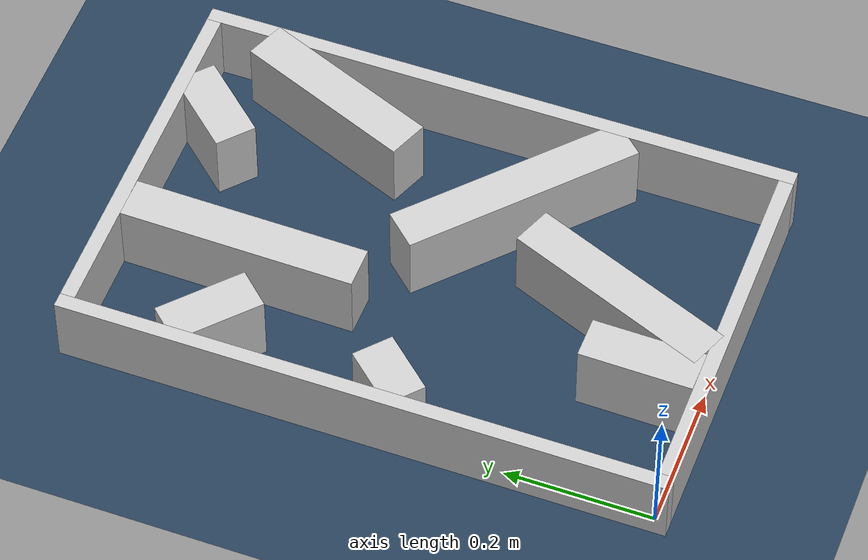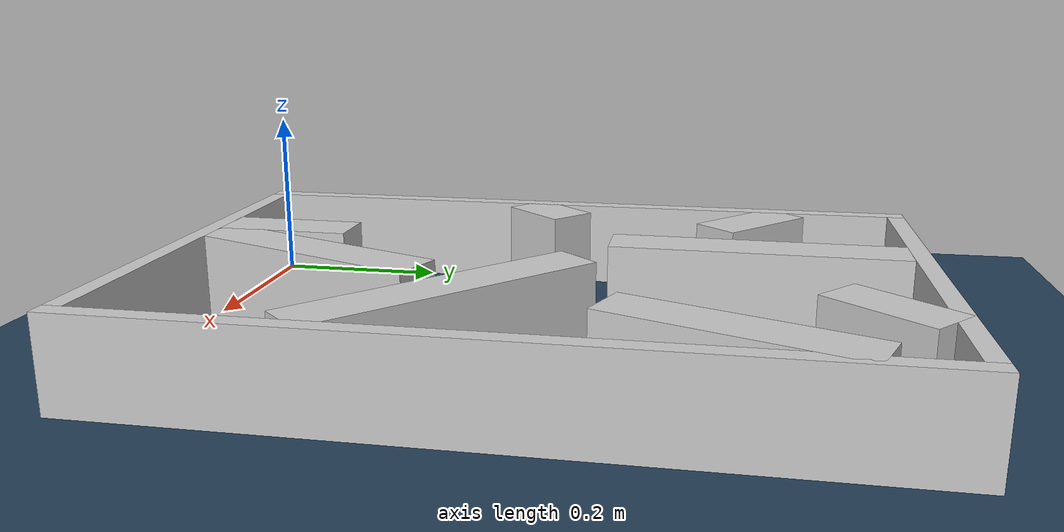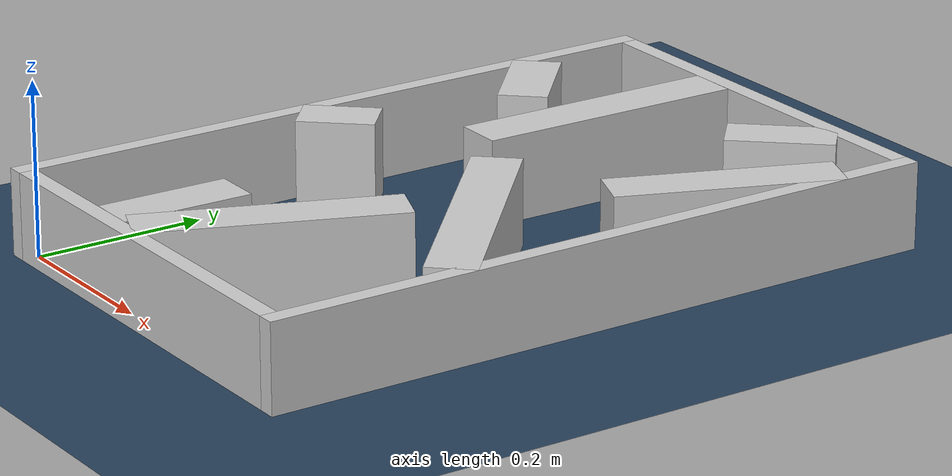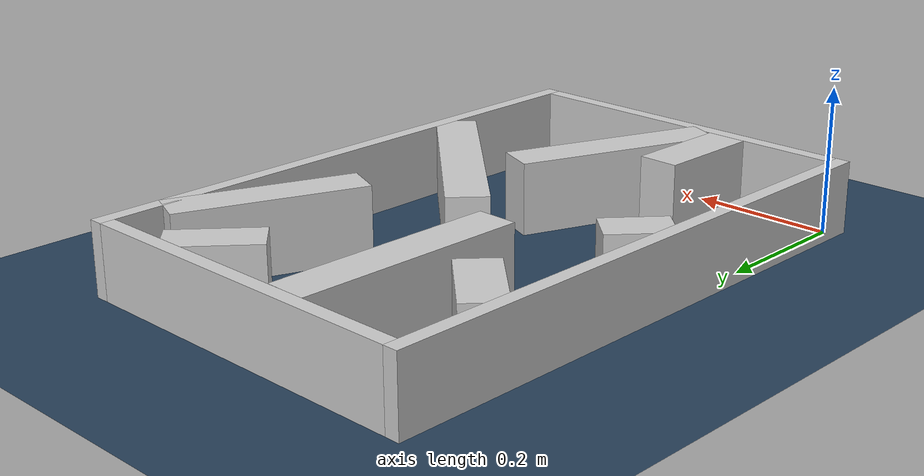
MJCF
<?xml version="1.0" ?>
<mujoco model="generated_real_template">
  <compiler angle="degree"/>
  <option timestep="0.002" integrator="implicitfast" iterations="100" cone="elliptic"/>
  <default>
    <geom density="1"/>
  </default>
  <asset>
    <texture builtin="gradient" height="3072" rgb1="0.3 0.5 0.7" rgb2="0 0 0" type="skybox" width="512"/>
    <texture builtin="checker" height="300" mark="edge" markrgb="0.8 0.8 0.8" name="groundplane" rgb1="0.2 0.3 0.4" rgb2="0.1 0.2 0.3" type="2d" width="300"/>
    <material name="groundplane" reflectance="0.2" texrepeat="5 5" texture="groundplane" texuniform="true"/>
  </asset>
  <worldbody>
    <light dir="0 0 -1" directional="true" pos="0 0 1.5"/>
    <geom name="floor" type="plane" condim="4" friction="0.5 0.005 0.001" material="groundplane" size="0 0 0.05"/>
    <body name="walls">
      <geom name="wall_boundary_left" type="box" condim="4" friction="1.0 0.005 0.0001" rgba="0.8 0.8 0.8 1" pos="-0.010000 0.387500 0.050000" euler="0 0 0.000000" size="0.010000 0.407500 0.050000"/>
      <geom name="wall_boundary_right" type="box" condim="4" friction="1.0 0.005 0.0001" rgba="0.8 0.8 0.8 1" pos="0.500000 0.387500 0.050000" euler="0 0 0.000000" size="0.010000 0.407500 0.050000"/>
      <geom name="wall_boundary_bottom" type="box" condim="4" friction="1.0 0.005 0.0001" rgba="0.8 0.8 0.8 1" pos="0.245000 -0.010000 0.050000" euler="0 0 0.000000" size="0.245000 0.010000 0.050000"/>
      <geom name="wall_boundary_top" type="box" condim="4" friction="1.0 0.005 0.0001" rgba="0.8 0.8 0.8 1" pos="0.245000 0.785000 0.050000" euler="0 0 0.000000" size="0.245000 0.010000 0.050000"/>
      <geom name="wall_inner_1_1" type="box" condim="4" friction="1.0 0.005 0.0001" rgba="0.8 0.8 0.8 1" pos="0.367169 0.316869 0.050000" euler="0 0 137.475692" size="0.166666 0.028500 0.050000"/>
      <geom name="wall_inner_1_2" type="box" condim="4" friction="1.0 0.005 0.0001" rgba="0.8 0.8 0.8 1" pos="0.046417 0.611035 0.050000" euler="0 0 137.475692" size="0.062981 0.028500 0.050000"/>
      <geom name="wall_inner_2_1" type="box" condim="4" friction="1.0 0.005 0.0001" rgba="0.8 0.8 0.8 1" pos="0.164233 0.075884 0.050000" euler="0 0 89.205069" size="0.075892 0.028500 0.050000"/>
      <geom name="wall_inner_2_2" type="box" condim="4" friction="1.0 0.005 0.0001" rgba="0.8 0.8 0.8 1" pos="0.171716 0.615203 0.050000" euler="0 0 89.205069" size="0.159812 0.028500 0.050000"/>
      <geom name="wall_inner_3_1" type="box" condim="4" friction="1.0 0.005 0.0001" rgba="0.8 0.8 0.8 1" pos="0.030875 0.363759 0.050000" euler="0 0 48.289064" size="0.044484 0.028500 0.050000"/>
      <geom name="wall_inner_3_2" type="box" condim="4" friction="1.0 0.005 0.0001" rgba="0.8 0.8 0.8 1" pos="0.356789 0.729417 0.050000" euler="0 0 48.289064" size="0.061061 0.028500 0.050000"/>
      <geom name="wall_inner_4_1" type="box" condim="4" friction="1.0 0.005 0.0001" rgba="0.8 0.8 0.8 1" pos="0.435959 0.590471 0.050000" euler="0 0 -111.770520" size="0.128265 0.028500 0.050000"/>
      <geom name="wall_inner_4_2" type="box" condim="4" friction="1.0 0.005 0.0001" rgba="0.8 0.8 0.8 1" pos="0.254875 0.137053 0.050000" euler="0 0 -111.770520" size="0.147579 0.028500 0.050000"/>
    </body>
  </worldbody>
</mujoco>
